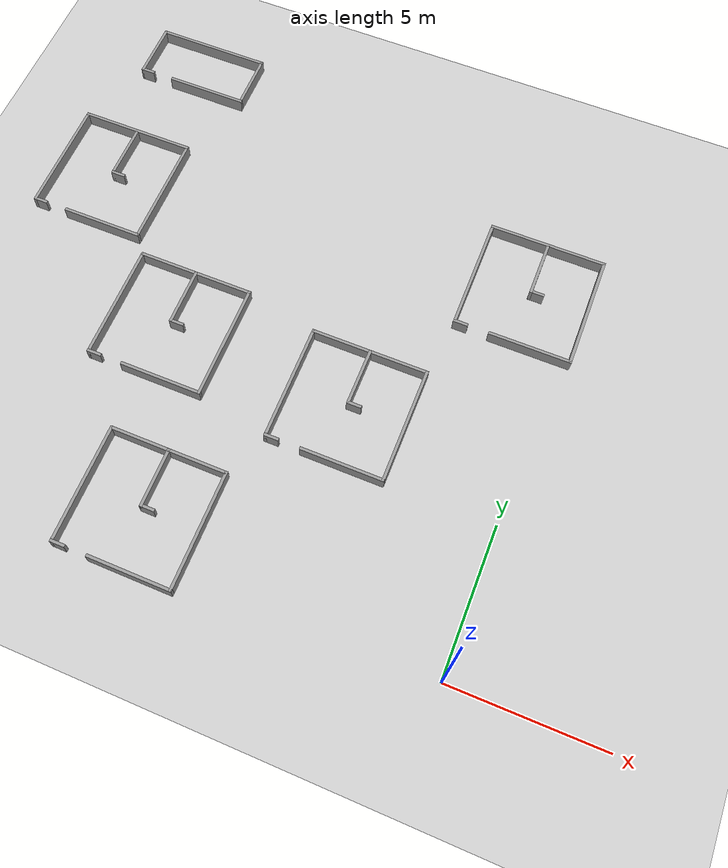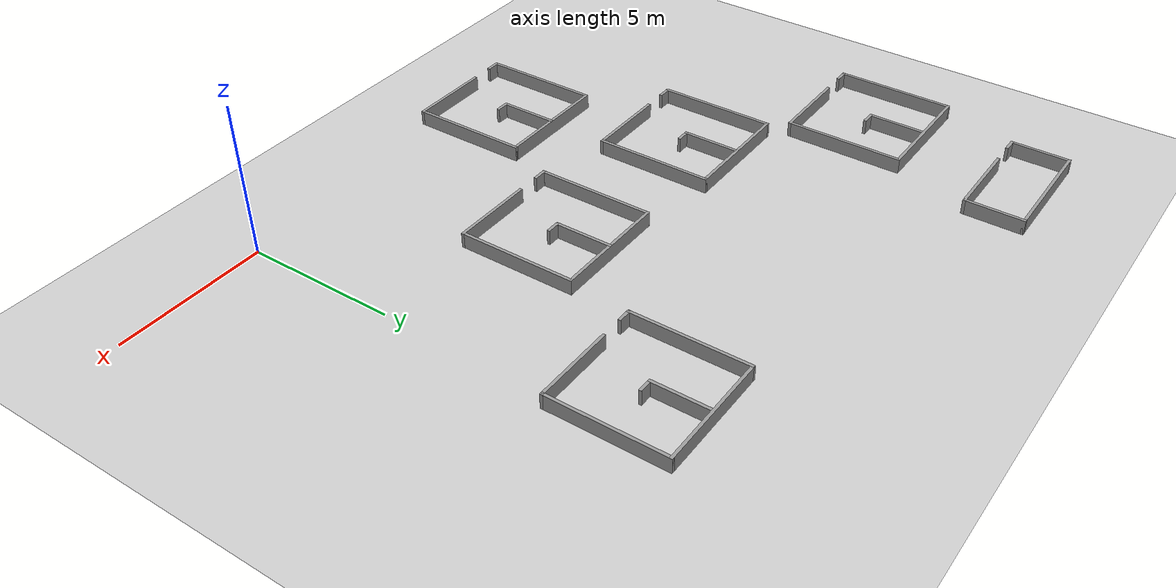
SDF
<sdf version="1.6">
 <world name="default">
  <model name="ground_plane">
   <static>1</static>
   <link name="link">
    <collision name="collision">
     <geometry><plane><normal>0 0 1</normal><size>40 40</size></plane></geometry>
     <surface>
      <contact><collide_bitmask>65535</collide_bitmask></contact>
      <friction><ode><mu>100</mu><mu2>50</mu2></ode></friction>
     </surface>
     <max_contacts>15</max_contacts>
    </collision>
    <visual name="visual">
     <cast_shadows>0</cast_shadows>
     <geometry><plane><normal>0 0 1</normal><size>40 40</size></plane></geometry>
     <material>
      <script><uri>file://media/materials/scripts/gazebo.material</uri><name>Gazebo/Grey</name></script>
     </material>
    </visual>
   </link>
  </model>
  <model name="shape4">
   <pose>-10.1 1.3 0 0 -0 0</pose>
   <link name="Wall_0">
    <collision name="Wall_0_Collision">
     <geometry><box><size>4 0.1 0.5</size></box></geometry>
     <pose>0 0 0.25 0 -0 0</pose>
    </collision>
    <visual name="Wall_0_Visual">
     <pose>0 0 0.25 0 -0 0</pose>
     <geometry><box><size>4 0.1 0.5</size></box></geometry>
     <material>
      <script><uri>file://media/materials/scripts/gazebo.material</uri><name>Gazebo/Grey</name></script>
      <ambient>1 1 1 1</ambient>
     </material>
     <meta><layer>0</layer></meta>
    </visual>
    <pose>-1.95 0 0 0 -0 -1.5708</pose>
   </link>
   <link name="Wall_1">
    <collision name="Wall_1_Collision">
     <geometry><box><size>0.5 0.1 0.5</size></box></geometry>
     <pose>0 0 0.25 0 -0 0</pose>
    </collision>
    <visual name="Wall_1_Visual">
     <pose>0 0 0.25 0 -0 0</pose>
     <geometry><box><size>0.5 0.1 0.5</size></box></geometry>
     <material>
      <script><uri>file://media/materials/scripts/gazebo.material</uri><name>Gazebo/Grey</name></script>
      <ambient>1 1 1 1</ambient>
     </material>
     <meta><layer>0</layer></meta>
    </visual>
    <pose>-1.75 -1.95 0 0 -0 0</pose>
   </link>
   <link name="Wall_3">
    <collision name="Wall_3_Collision">
     <geometry><box><size>4 0.1 0.5</size></box></geometry>
     <pose>0 0 0.25 0 -0 0</pose>
    </collision>
    <visual name="Wall_3_Visual">
     <pose>0 0 0.25 0 -0 0</pose>
     <geometry><box><size>4 0.1 0.5</size></box></geometry>
     <material>
      <script><uri>file://media/materials/scripts/gazebo.material</uri><name>Gazebo/Grey</name></script>
      <ambient>1 1 1 1</ambient>
     </material>
     <meta><layer>0</layer></meta>
    </visual>
    <pose>0 1.95 0 0 -0 0</pose>
   </link>
   <link name="Wall_4">
    <collision name="Wall_4_Collision">
     <geometry><box><size>4 0.1 0.5</size></box></geometry>
     <pose>0 0 0.25 0 -0 0</pose>
    </collision>
    <visual name="Wall_4_Visual">
     <pose>0 0 0.25 0 -0 0</pose>
     <geometry><box><size>4 0.1 0.5</size></box></geometry>
     <material>
      <script><uri>file://media/materials/scripts/gazebo.material</uri><name>Gazebo/Grey</name></script>
      <ambient>1 1 1 1</ambient>
     </material>
     <meta><layer>0</layer></meta>
    </visual>
    <pose>1.95 0 0 0 -0 -1.5708</pose>
   </link>
   <link name="Wall_5">
    <collision name="Wall_5_Collision">
     <geometry><box><size>2.8 0.1 0.5</size></box></geometry>
     <pose>0 0 0.25 0 -0 0</pose>
    </collision>
    <visual name="Wall_5_Visual">
     <pose>0 0 0.25 0 -0 0</pose>
     <geometry><box><size>2.8 0.1 0.5</size></box></geometry>
     <material>
      <script><uri>file://media/materials/scripts/gazebo.material</uri><name>Gazebo/Grey</name></script>
      <ambient>1 1 1 1</ambient>
     </material>
     <meta><layer>0</layer></meta>
    </visual>
    <pose>0.6 -1.95 0 0 -0 3.14159</pose>
   </link>
   <link name="Wall_7">
    <collision name="Wall_7_Collision">
     <geometry><box><size>2 0.1 0.5</size></box></geometry>
     <pose>0 0 0.25 0 -0 0</pose>
    </collision>
    <visual name="Wall_7_Visual">
     <pose>0 0 0.25 0 -0 0</pose>
     <geometry><box><size>2 0.1 0.5</size></box></geometry>
     <material>
      <script><uri>file://media/materials/scripts/gazebo.material</uri><name>Gazebo/Grey</name></script>
      <ambient>1 1 1 1</ambient>
     </material>
     <meta><layer>0</layer></meta>
    </visual>
    <pose>0.015 0.991 0 0 -0 -1.5708</pose>
   </link>
   <link name="Wall_8">
    <collision name="Wall_8_Collision">
     <geometry><box><size>0.5 0.1 0.5</size></box></geometry>
     <pose>0 0 0.25 0 -0 0</pose>
    </collision>
    <visual name="Wall_8_Visual">
     <pose>0 0 0.25 0 -0 0</pose>
     <geometry><box><size>0.5 0.1 0.5</size></box></geometry>
     <material>
      <script><uri>file://media/materials/scripts/gazebo.material</uri><name>Gazebo/Grey</name></script>
      <ambient>1 1 1 1</ambient>
     </material>
     <meta><layer>0</layer></meta>
    </visual>
    <pose>0.215 0.041 0 0 -0 0</pose>
   </link>
   <static>1</static>
  </model>
  <model name="shape4">
   <pose>-5.6 6.8 0 0 -0 0</pose>
   <link name="Wall_0">
    <collision name="Wall_0_Collision">
     <geometry><box><size>4 0.1 0.5</size></box></geometry>
     <pose>0 0 0.25 0 -0 0</pose>
    </collision>
    <visual name="Wall_0_Visual">
     <pose>0 0 0.25 0 -0 0</pose>
     <geometry><box><size>4 0.1 0.5</size></box></geometry>
     <material>
      <script><uri>file://media/materials/scripts/gazebo.material</uri><name>Gazebo/Grey</name></script>
      <ambient>1 1 1 1</ambient>
     </material>
     <meta><layer>0</layer></meta>
    </visual>
    <pose>-1.95 0 0 0 -0 -1.5708</pose>
   </link>
   <link name="Wall_1">
    <collision name="Wall_1_Collision">
     <geometry><box><size>0.5 0.1 0.5</size></box></geometry>
     <pose>0 0 0.25 0 -0 0</pose>
    </collision>
    <visual name="Wall_1_Visual">
     <pose>0 0 0.25 0 -0 0</pose>
     <geometry><box><size>0.5 0.1 0.5</size></box></geometry>
     <material>
      <script><uri>file://media/materials/scripts/gazebo.material</uri><name>Gazebo/Grey</name></script>
      <ambient>1 1 1 1</ambient>
     </material>
     <meta><layer>0</layer></meta>
    </visual>
    <pose>-1.75 -1.95 0 0 -0 0</pose>
   </link>
   <link name="Wall_3">
    <collision name="Wall_3_Collision">
     <geometry><box><size>4 0.1 0.5</size></box></geometry>
     <pose>0 0 0.25 0 -0 0</pose>
    </collision>
    <visual name="Wall_3_Visual">
     <pose>0 0 0.25 0 -0 0</pose>
     <geometry><box><size>4 0.1 0.5</size></box></geometry>
     <material>
      <script><uri>file://media/materials/scripts/gazebo.material</uri><name>Gazebo/Grey</name></script>
      <ambient>1 1 1 1</ambient>
     </material>
     <meta><layer>0</layer></meta>
    </visual>
    <pose>0 1.95 0 0 -0 0</pose>
   </link>
   <link name="Wall_4">
    <collision name="Wall_4_Collision">
     <geometry><box><size>4 0.1 0.5</size></box></geometry>
     <pose>0 0 0.25 0 -0 0</pose>
    </collision>
    <visual name="Wall_4_Visual">
     <pose>0 0 0.25 0 -0 0</pose>
     <geometry><box><size>4 0.1 0.5</size></box></geometry>
     <material>
      <script><uri>file://media/materials/scripts/gazebo.material</uri><name>Gazebo/Grey</name></script>
      <ambient>1 1 1 1</ambient>
     </material>
     <meta><layer>0</layer></meta>
    </visual>
    <pose>1.95 0 0 0 -0 -1.5708</pose>
   </link>
   <link name="Wall_5">
    <collision name="Wall_5_Collision">
     <geometry><box><size>2.8 0.1 0.5</size></box></geometry>
     <pose>0 0 0.25 0 -0 0</pose>
    </collision>
    <visual name="Wall_5_Visual">
     <pose>0 0 0.25 0 -0 0</pose>
     <geometry><box><size>2.8 0.1 0.5</size></box></geometry>
     <material>
      <script><uri>file://media/materials/scripts/gazebo.material</uri><name>Gazebo/Grey</name></script>
      <ambient>1 1 1 1</ambient>
     </material>
     <meta><layer>0</layer></meta>
    </visual>
    <pose>0.6 -1.95 0 0 -0 3.14159</pose>
   </link>
   <link name="Wall_7">
    <collision name="Wall_7_Collision">
     <geometry><box><size>2 0.1 0.5</size></box></geometry>
     <pose>0 0 0.25 0 -0 0</pose>
    </collision>
    <visual name="Wall_7_Visual">
     <pose>0 0 0.25 0 -0 0</pose>
     <geometry><box><size>2 0.1 0.5</size></box></geometry>
     <material>
      <script><uri>file://media/materials/scripts/gazebo.material</uri><name>Gazebo/Grey</name></script>
      <ambient>1 1 1 1</ambient>
     </material>
     <meta><layer>0</layer></meta>
    </visual>
    <pose>0.015 0.991 0 0 -0 -1.5708</pose>
   </link>
   <link name="Wall_8">
    <collision name="Wall_8_Collision">
     <geometry><box><size>0.5 0.1 0.5</size></box></geometry>
     <pose>0 0 0.25 0 -0 0</pose>
    </collision>
    <visual name="Wall_8_Visual">
     <pose>0 0 0.25 0 -0 0</pose>
     <geometry><box><size>0.5 0.1 0.5</size></box></geometry>
     <material>
      <script><uri>file://media/materials/scripts/gazebo.material</uri><name>Gazebo/Grey</name></script>
      <ambient>1 1 1 1</ambient>
     </material>
     <meta><layer>0</layer></meta>
    </visual>
    <pose>0.215 0.041 0 0 -0 0</pose>
   </link>
   <static>1</static>
  </model>
  <model name="shape4">
   <pose>-1.5 12.8 0 0 -0 0</pose>
   <link name="Wall_0">
    <collision name="Wall_0_Collision">
     <geometry><box><size>4 0.1 0.5</size></box></geometry>
     <pose>0 0 0.25 0 -0 0</pose>
    </collision>
    <visual name="Wall_0_Visual">
     <pose>0 0 0.25 0 -0 0</pose>
     <geometry><box><size>4 0.1 0.5</size></box></geometry>
     <material>
      <script><uri>file://media/materials/scripts/gazebo.material</uri><name>Gazebo/Grey</name></script>
      <ambient>1 1 1 1</ambient>
     </material>
     <meta><layer>0</layer></meta>
    </visual>
    <pose>-1.95 0 0 0 -0 -1.5708</pose>
   </link>
   <link name="Wall_1">
    <collision name="Wall_1_Collision">
     <geometry><box><size>0.5 0.1 0.5</size></box></geometry>
     <pose>0 0 0.25 0 -0 0</pose>
    </collision>
    <visual name="Wall_1_Visual">
     <pose>0 0 0.25 0 -0 0</pose>
     <geometry><box><size>0.5 0.1 0.5</size></box></geometry>
     <material>
      <script><uri>file://media/materials/scripts/gazebo.material</uri><name>Gazebo/Grey</name></script>
      <ambient>1 1 1 1</ambient>
     </material>
     <meta><layer>0</layer></meta>
    </visual>
    <pose>-1.75 -1.95 0 0 -0 0</pose>
   </link>
   <link name="Wall_3">
    <collision name="Wall_3_Collision">
     <geometry><box><size>4 0.1 0.5</size></box></geometry>
     <pose>0 0 0.25 0 -0 0</pose>
    </collision>
    <visual name="Wall_3_Visual">
     <pose>0 0 0.25 0 -0 0</pose>
     <geometry><box><size>4 0.1 0.5</size></box></geometry>
     <material>
      <script><uri>file://media/materials/scripts/gazebo.material</uri><name>Gazebo/Grey</name></script>
      <ambient>1 1 1 1</ambient>
     </material>
     <meta><layer>0</layer></meta>
    </visual>
    <pose>0 1.95 0 0 -0 0</pose>
   </link>
   <link name="Wall_4">
    <collision name="Wall_4_Collision">
     <geometry><box><size>4 0.1 0.5</size></box></geometry>
     <pose>0 0 0.25 0 -0 0</pose>
    </collision>
    <visual name="Wall_4_Visual">
     <pose>0 0 0.25 0 -0 0</pose>
     <geometry><box><size>4 0.1 0.5</size></box></geometry>
     <material>
      <script><uri>file://media/materials/scripts/gazebo.material</uri><name>Gazebo/Grey</name></script>
      <ambient>1 1 1 1</ambient>
     </material>
     <meta><layer>0</layer></meta>
    </visual>
    <pose>1.95 0 0 0 -0 -1.5708</pose>
   </link>
   <link name="Wall_5">
    <collision name="Wall_5_Collision">
     <geometry><box><size>2.8 0.1 0.5</size></box></geometry>
     <pose>0 0 0.25 0 -0 0</pose>
    </collision>
    <visual name="Wall_5_Visual">
     <pose>0 0 0.25 0 -0 0</pose>
     <geometry><box><size>2.8 0.1 0.5</size></box></geometry>
     <material>
      <script><uri>file://media/materials/scripts/gazebo.material</uri><name>Gazebo/Grey</name></script>
      <ambient>1 1 1 1</ambient>
     </material>
     <meta><layer>0</layer></meta>
    </visual>
    <pose>0.6 -1.95 0 0 -0 3.14159</pose>
   </link>
   <link name="Wall_7">
    <collision name="Wall_7_Collision">
     <geometry><box><size>2 0.1 0.5</size></box></geometry>
     <pose>0 0 0.25 0 -0 0</pose>
    </collision>
    <visual name="Wall_7_Visual">
     <pose>0 0 0.25 0 -0 0</pose>
     <geometry><box><size>2 0.1 0.5</size></box></geometry>
     <material>
      <script><uri>file://media/materials/scripts/gazebo.material</uri><name>Gazebo/Grey</name></script>
      <ambient>1 1 1 1</ambient>
     </material>
     <meta><layer>0</layer></meta>
    </visual>
    <pose>0.015 0.991 0 0 -0 -1.5708</pose>
   </link>
   <link name="Wall_8">
    <collision name="Wall_8_Collision">
     <geometry><box><size>0.5 0.1 0.5</size></box></geometry>
     <pose>0 0 0.25 0 -0 0</pose>
    </collision>
    <visual name="Wall_8_Visual">
     <pose>0 0 0.25 0 -0 0</pose>
     <geometry><box><size>0.5 0.1 0.5</size></box></geometry>
     <material>
      <script><uri>file://media/materials/scripts/gazebo.material</uri><name>Gazebo/Grey</name></script>
      <ambient>1 1 1 1</ambient>
     </material>
     <meta><layer>0</layer></meta>
    </visual>
    <pose>0.215 0.041 0 0 -0 0</pose>
   </link>
   <static>1</static>
  </model>
  <model name="shape4">
   <pose>-16.4 11.8 0 0 -0 0</pose>
   <link name="Wall_0">
    <collision name="Wall_0_Collision">
     <geometry><box><size>4 0.1 0.5</size></box></geometry>
     <pose>0 0 0.25 0 -0 0</pose>
    </collision>
    <visual name="Wall_0_Visual">
     <pose>0 0 0.25 0 -0 0</pose>
     <geometry><box><size>4 0.1 0.5</size></box></geometry>
     <material>
      <script><uri>file://media/materials/scripts/gazebo.material</uri><name>Gazebo/Grey</name></script>
      <ambient>1 1 1 1</ambient>
     </material>
     <meta><layer>0</layer></meta>
    </visual>
    <pose>-1.95 0 0 0 -0 -1.5708</pose>
   </link>
   <link name="Wall_1">
    <collision name="Wall_1_Collision">
     <geometry><box><size>0.5 0.1 0.5</size></box></geometry>
     <pose>0 0 0.25 0 -0 0</pose>
    </collision>
    <visual name="Wall_1_Visual">
     <pose>0 0 0.25 0 -0 0</pose>
     <geometry><box><size>0.5 0.1 0.5</size></box></geometry>
     <material>
      <script><uri>file://media/materials/scripts/gazebo.material</uri><name>Gazebo/Grey</name></script>
      <ambient>1 1 1 1</ambient>
     </material>
     <meta><layer>0</layer></meta>
    </visual>
    <pose>-1.75 -1.95 0 0 -0 0</pose>
   </link>
   <link name="Wall_3">
    <collision name="Wall_3_Collision">
     <geometry><box><size>4 0.1 0.5</size></box></geometry>
     <pose>0 0 0.25 0 -0 0</pose>
    </collision>
    <visual name="Wall_3_Visual">
     <pose>0 0 0.25 0 -0 0</pose>
     <geometry><box><size>4 0.1 0.5</size></box></geometry>
     <material>
      <script><uri>file://media/materials/scripts/gazebo.material</uri><name>Gazebo/Grey</name></script>
      <ambient>1 1 1 1</ambient>
     </material>
     <meta><layer>0</layer></meta>
    </visual>
    <pose>0 1.95 0 0 -0 0</pose>
   </link>
   <link name="Wall_4">
    <collision name="Wall_4_Collision">
     <geometry><box><size>4 0.1 0.5</size></box></geometry>
     <pose>0 0 0.25 0 -0 0</pose>
    </collision>
    <visual name="Wall_4_Visual">
     <pose>0 0 0.25 0 -0 0</pose>
     <geometry><box><size>4 0.1 0.5</size></box></geometry>
     <material>
      <script><uri>file://media/materials/scripts/gazebo.material</uri><name>Gazebo/Grey</name></script>
      <ambient>1 1 1 1</ambient>
     </material>
     <meta><layer>0</layer></meta>
    </visual>
    <pose>1.95 0 0 0 -0 -1.5708</pose>
   </link>
   <link name="Wall_5">
    <collision name="Wall_5_Collision">
     <geometry><box><size>2.8 0.1 0.5</size></box></geometry>
     <pose>0 0 0.25 0 -0 0</pose>
    </collision>
    <visual name="Wall_5_Visual">
     <pose>0 0 0.25 0 -0 0</pose>
     <geometry><box><size>2.8 0.1 0.5</size></box></geometry>
     <material>
      <script><uri>file://media/materials/scripts/gazebo.material</uri><name>Gazebo/Grey</name></script>
      <ambient>1 1 1 1</ambient>
     </material>
     <meta><layer>0</layer></meta>
    </visual>
    <pose>0.6 -1.95 0 0 -0 3.14159</pose>
   </link>
   <link name="Wall_7">
    <collision name="Wall_7_Collision">
     <geometry><box><size>2 0.1 0.5</size></box></geometry>
     <pose>0 0 0.25 0 -0 0</pose>
    </collision>
    <visual name="Wall_7_Visual">
     <pose>0 0 0.25 0 -0 0</pose>
     <geometry><box><size>2 0.1 0.5</size></box></geometry>
     <material>
      <script><uri>file://media/materials/scripts/gazebo.material</uri><name>Gazebo/Grey</name></script>
      <ambient>1 1 1 1</ambient>
     </material>
     <meta><layer>0</layer></meta>
    </visual>
    <pose>0.015 0.991 0 0 -0 -1.5708</pose>
   </link>
   <link name="Wall_8">
    <collision name="Wall_8_Collision">
     <geometry><box><size>0.5 0.1 0.5</size></box></geometry>
     <pose>0 0 0.25 0 -0 0</pose>
    </collision>
    <visual name="Wall_8_Visual">
     <pose>0 0 0.25 0 -0 0</pose>
     <geometry><box><size>0.5 0.1 0.5</size></box></geometry>
     <material>
      <script><uri>file://media/materials/scripts/gazebo.material</uri><name>Gazebo/Grey</name></script>
      <ambient>1 1 1 1</ambient>
     </material>
     <meta><layer>0</layer></meta>
    </visual>
    <pose>0.215 0.041 0 0 -0 0</pose>
   </link>
   <static>1</static>
  </model>
  <model name="shape2">
   <pose>-15.5 17.3 0 0 -0 0</pose>
   <link name="Wall_0">
    <collision name="Wall_0_Collision">
     <geometry><box><size>3.98685 0.1 0.5</size></box></geometry>
     <pose>0 0 0.25 0 -0 0</pose>
    </collision>
    <visual name="Wall_0_Visual">
     <pose>0 0 0.25 0 -0 0</pose>
     <geometry><box><size>3.98685 0.1 0.5</size></box></geometry>
     <material>
      <script><uri>file://media/materials/scripts/gazebo.material</uri><name>Gazebo/Grey</name></script>
      <ambient>1 1 1 1</ambient>
     </material>
     <meta><layer>0</layer></meta>
    </visual>
    <pose>0.003288 0.95 0 0 -0 0</pose>
   </link>
   <link name="Wall_1">
    <collision name="Wall_1_Collision">
     <geometry><box><size>2 0.1 0.5</size></box></geometry>
     <pose>0 0 0.25 0 -0 0</pose>
    </collision>
    <visual name="Wall_1_Visual">
     <pose>0 0 0.25 0 -0 0</pose>
     <geometry><box><size>2 0.1 0.5</size></box></geometry>
     <material>
      <script><uri>file://media/materials/scripts/gazebo.material</uri><name>Gazebo/Grey</name></script>
      <ambient>1 1 1 1</ambient>
     </material>
     <meta><layer>0</layer></meta>
    </visual>
    <pose>1.94671 0 0 0 -0 -1.5708</pose>
   </link>
   <link name="Wall_2">
    <collision name="Wall_2_Collision">
     <geometry><box><size>2.8 0.1 0.5</size></box></geometry>
     <pose>0 0 0.25 0 -0 0</pose>
    </collision>
    <visual name="Wall_2_Visual">
     <pose>0 0 0.25 0 -0 0</pose>
     <geometry><box><size>2.8 0.1 0.5</size></box></geometry>
     <material>
      <script><uri>file://media/materials/scripts/gazebo.material</uri><name>Gazebo/Grey</name></script>
      <ambient>1 1 1 1</ambient>
     </material>
     <meta><layer>0</layer></meta>
    </visual>
    <pose>0.596712 -0.95 0 0 -0 3.14159</pose>
   </link>
   <link name="Wall_4">
    <collision name="Wall_4_Collision">
     <geometry><box><size>2 0.1 0.5</size></box></geometry>
     <pose>0 0 0.25 0 -0 0</pose>
    </collision>
    <visual name="Wall_4_Visual">
     <pose>0 0 0.25 0 -0 0</pose>
     <geometry><box><size>2 0.1 0.5</size></box></geometry>
     <material>
      <script><uri>file://media/materials/scripts/gazebo.material</uri><name>Gazebo/Grey</name></script>
      <ambient>1 1 1 1</ambient>
     </material>
     <meta><layer>0</layer></meta>
    </visual>
    <pose>-1.94671 0 0 0 -0 -1.5708</pose>
   </link>
   <link name="Wall_5">
    <collision name="Wall_5_Collision">
     <geometry><box><size>0.5 0.1 0.5</size></box></geometry>
     <pose>0 0 0.25 0 -0 0</pose>
    </collision>
    <visual name="Wall_5_Visual">
     <pose>0 0 0.25 0 -0 0</pose>
     <geometry><box><size>0.5 0.1 0.5</size></box></geometry>
     <material>
      <script><uri>file://media/materials/scripts/gazebo.material</uri><name>Gazebo/Grey</name></script>
      <ambient>1 1 1 1</ambient>
     </material>
     <meta><layer>0</layer></meta>
    </visual>
    <pose>-1.74671 -0.95 0 0 -0 0</pose>
   </link>
   <static>1</static>
  </model>
  <model name="shape4">
   <pose>-12 7.3 0 0 -0 0</pose>
   <link name="Wall_0">
    <collision name="Wall_0_Collision">
     <geometry><box><size>4 0.1 0.5</size></box></geometry>
     <pose>0 0 0.25 0 -0 0</pose>
    </collision>
    <visual name="Wall_0_Visual">
     <pose>0 0 0.25 0 -0 0</pose>
     <geometry><box><size>4 0.1 0.5</size></box></geometry>
     <material>
      <script><uri>file://media/materials/scripts/gazebo.material</uri><name>Gazebo/Grey</name></script>
      <ambient>1 1 1 1</ambient>
     </material>
     <meta><layer>0</layer></meta>
    </visual>
    <pose>-1.95 0 0 0 -0 -1.5708</pose>
   </link>
   <link name="Wall_1">
    <collision name="Wall_1_Collision">
     <geometry><box><size>0.5 0.1 0.5</size></box></geometry>
     <pose>0 0 0.25 0 -0 0</pose>
    </collision>
    <visual name="Wall_1_Visual">
     <pose>0 0 0.25 0 -0 0</pose>
     <geometry><box><size>0.5 0.1 0.5</size></box></geometry>
     <material>
      <script><uri>file://media/materials/scripts/gazebo.material</uri><name>Gazebo/Grey</name></script>
      <ambient>1 1 1 1</ambient>
     </material>
     <meta><layer>0</layer></meta>
    </visual>
    <pose>-1.75 -1.95 0 0 -0 0</pose>
   </link>
   <link name="Wall_3">
    <collision name="Wall_3_Collision">
     <geometry><box><size>4 0.1 0.5</size></box></geometry>
     <pose>0 0 0.25 0 -0 0</pose>
    </collision>
    <visual name="Wall_3_Visual">
     <pose>0 0 0.25 0 -0 0</pose>
     <geometry><box><size>4 0.1 0.5</size></box></geometry>
     <material>
      <script><uri>file://media/materials/scripts/gazebo.material</uri><name>Gazebo/Grey</name></script>
      <ambient>1 1 1 1</ambient>
     </material>
     <meta><layer>0</layer></meta>
    </visual>
    <pose>0 1.95 0 0 -0 0</pose>
   </link>
   <link name="Wall_4">
    <collision name="Wall_4_Collision">
     <geometry><box><size>4 0.1 0.5</size></box></geometry>
     <pose>0 0 0.25 0 -0 0</pose>
    </collision>
    <visual name="Wall_4_Visual">
     <pose>0 0 0.25 0 -0 0</pose>
     <geometry><box><size>4 0.1 0.5</size></box></geometry>
     <material>
      <script><uri>file://media/materials/scripts/gazebo.material</uri><name>Gazebo/Grey</name></script>
      <ambient>1 1 1 1</ambient>
     </material>
     <meta><layer>0</layer></meta>
    </visual>
    <pose>1.95 0 0 0 -0 -1.5708</pose>
   </link>
   <link name="Wall_5">
    <collision name="Wall_5_Collision">
     <geometry><box><size>2.8 0.1 0.5</size></box></geometry>
     <pose>0 0 0.25 0 -0 0</pose>
    </collision>
    <visual name="Wall_5_Visual">
     <pose>0 0 0.25 0 -0 0</pose>
     <geometry><box><size>2.8 0.1 0.5</size></box></geometry>
     <material>
      <script><uri>file://media/materials/scripts/gazebo.material</uri><name>Gazebo/Grey</name></script>
      <ambient>1 1 1 1</ambient>
     </material>
     <meta><layer>0</layer></meta>
    </visual>
    <pose>0.6 -1.95 0 0 -0 3.14159</pose>
   </link>
   <link name="Wall_7">
    <collision name="Wall_7_Collision">
     <geometry><box><size>2 0.1 0.5</size></box></geometry>
     <pose>0 0 0.25 0 -0 0</pose>
    </collision>
    <visual name="Wall_7_Visual">
     <pose>0 0 0.25 0 -0 0</pose>
     <geometry><box><size>2 0.1 0.5</size></box></geometry>
     <material>
      <script><uri>file://media/materials/scripts/gazebo.material</uri><name>Gazebo/Grey</name></script>
      <ambient>1 1 1 1</ambient>
     </material>
     <meta><layer>0</layer></meta>
    </visual>
    <pose>0.015 0.991 0 0 -0 -1.5708</pose>
   </link>
   <link name="Wall_8">
    <collision name="Wall_8_Collision">
     <geometry><box><size>0.5 0.1 0.5</size></box></geometry>
     <pose>0 0 0.25 0 -0 0</pose>
    </collision>
    <visual name="Wall_8_Visual">
     <pose>0 0 0.25 0 -0 0</pose>
     <geometry><box><size>0.5 0.1 0.5</size></box></geometry>
     <material>
      <script><uri>file://media/materials/scripts/gazebo.material</uri><name>Gazebo/Grey</name></script>
      <ambient>1 1 1 1</ambient>
     </material>
     <meta><layer>0</layer></meta>
    </visual>
    <pose>0.215 0.041 0 0 -0 0</pose>
   </link>
   <static>1</static>
  </model>
 </world>
</sdf>
